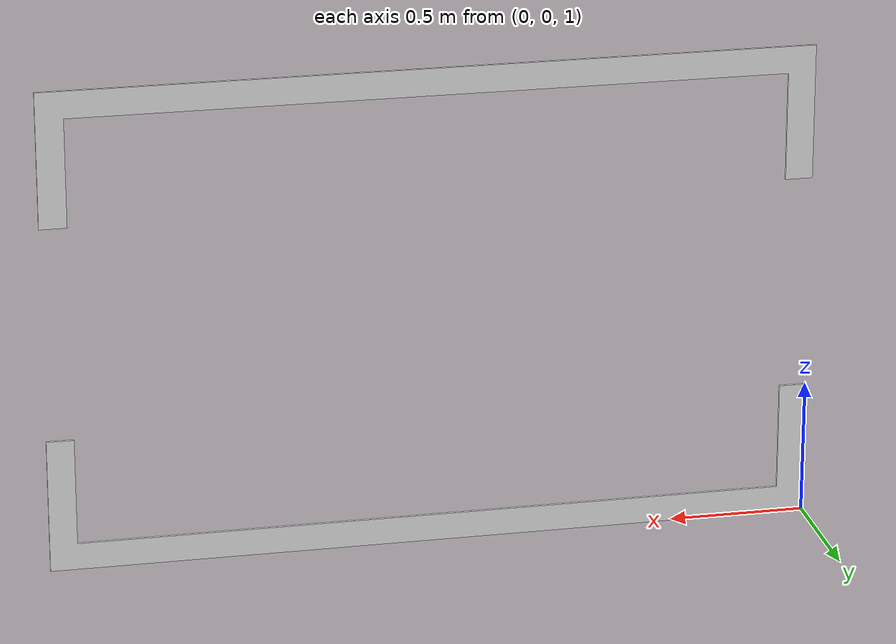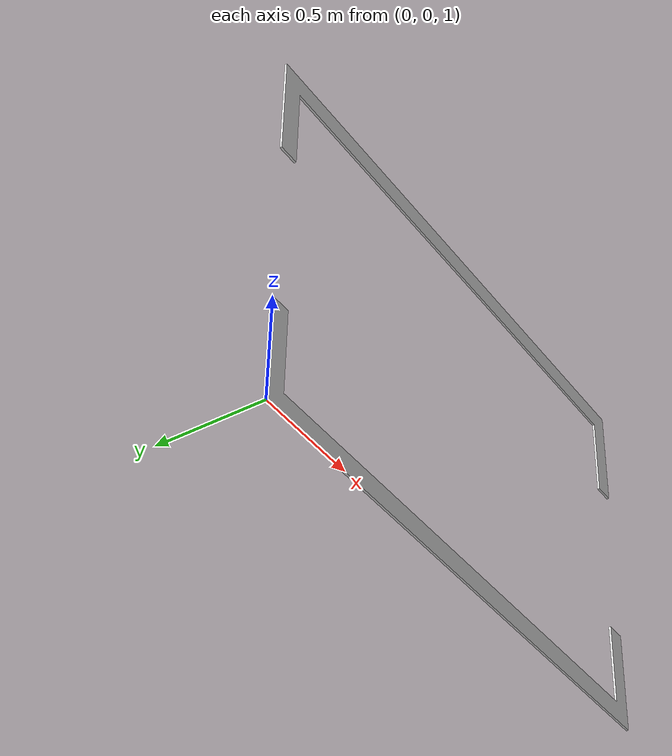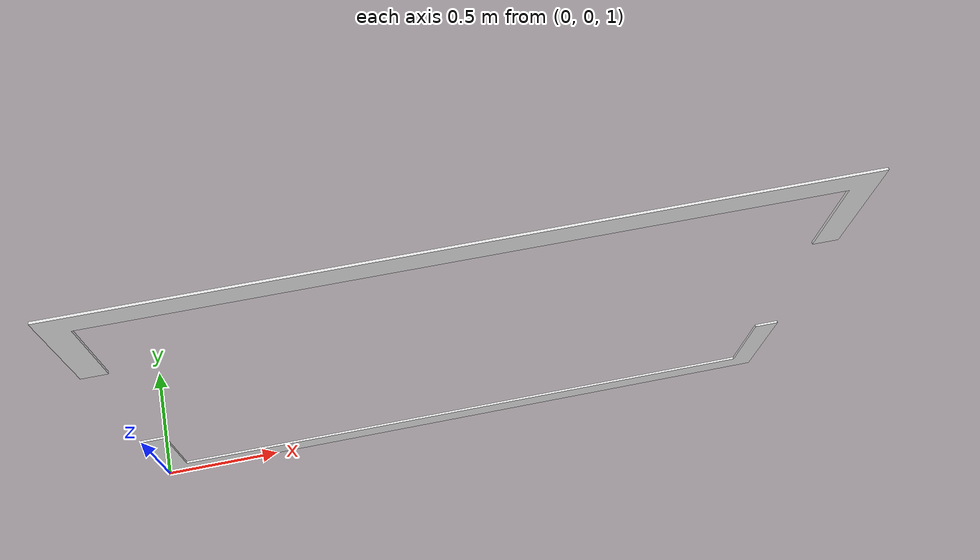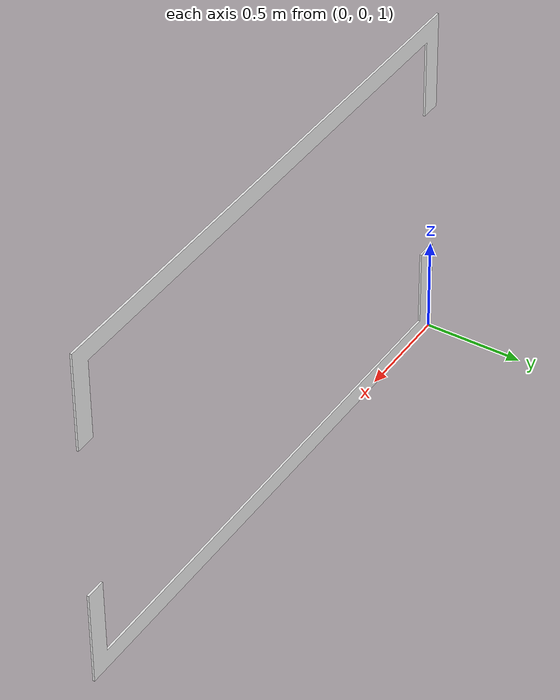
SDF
<?xml version="1.0" ?>
<sdf version="1.4">
  <model name="start_grid">
    <static>true</static>
    <link name="link">
      <inertial>
        <pose>0 0 1 0 0 0</pose>
        <mass>5</mass>
        <inertia>
          <ixx>0.833</ixx>
          <iyy>0.833</iyy>
          <izz>0.833</izz>
          <ixy>0</ixy>
          <ixz>0</ixz>
        </inertia>
      </inertial>
      <collision name="collision">
        <pose>0 0 1 0 0 0</pose>
        <geometry>
          <mesh>
            <uri>model://start_grid/meshes/start_grid.dae</uri>
            <scale>1 1 1</scale>
          </mesh>
        </geometry>
      </collision>

      <visual name="visual">
        <pose>0 0 1 0 0 0</pose>
        <geometry>
          <mesh>
            <uri>model://start_grid/meshes/start_grid.dae</uri>
            <scale>1 1 1</scale>
          </mesh>
        </geometry>
        <material>
          <script>
            <uri>model://start_grid/materials/scripts</uri>
            <uri>model://start_grid/materials/textures/</uri>
            <name>white</name>
          </script>
        </material>
      </visual>
    </link>
  </model>
</sdf>
